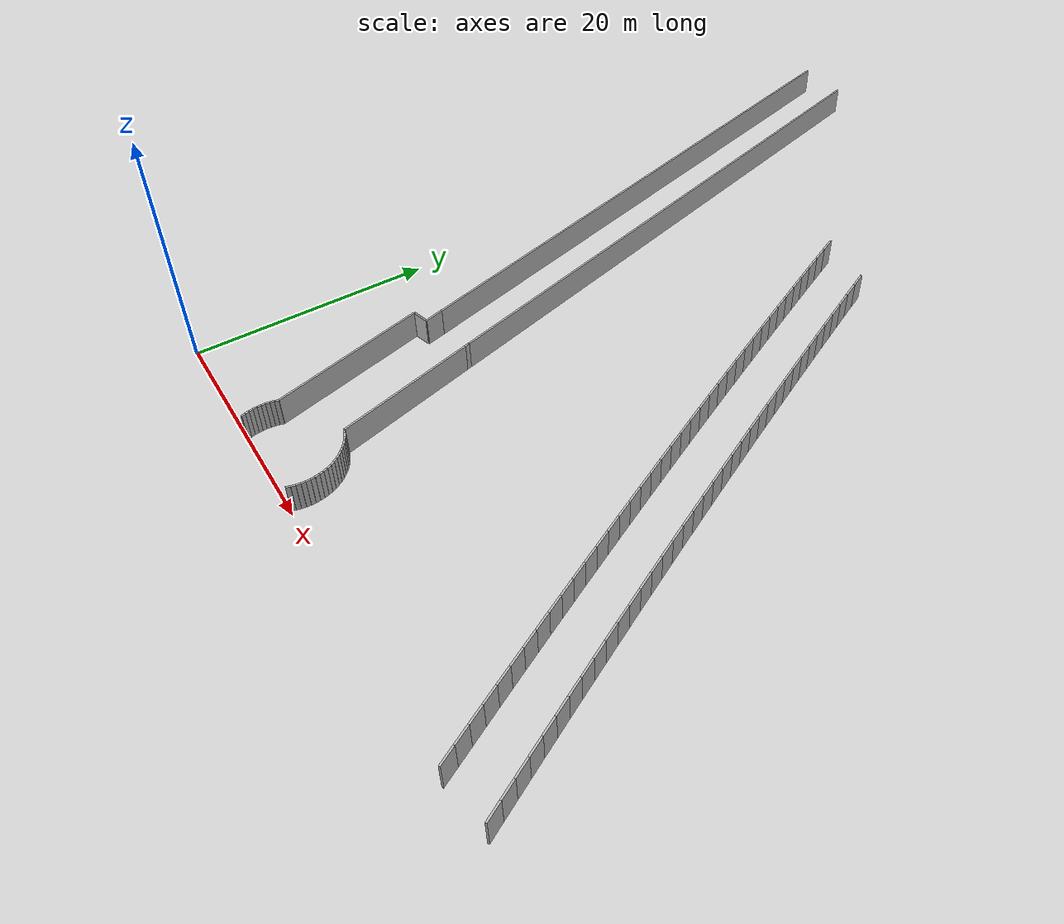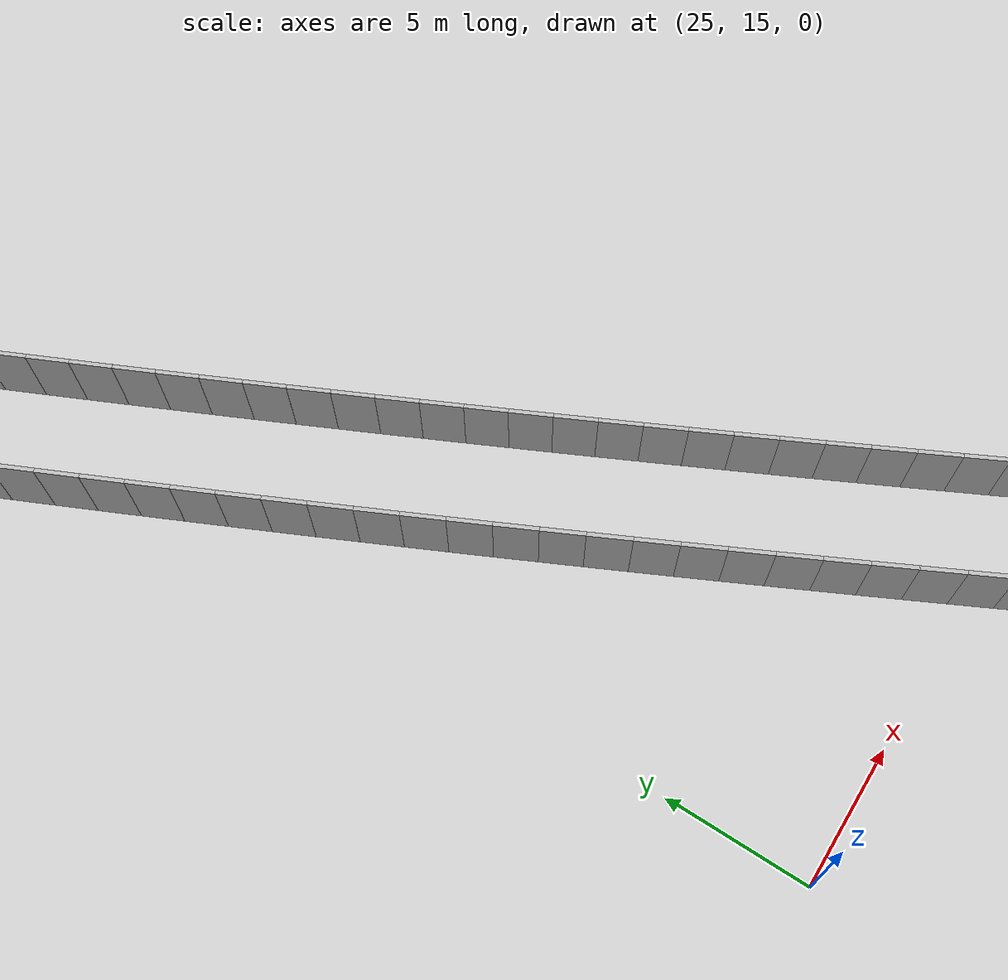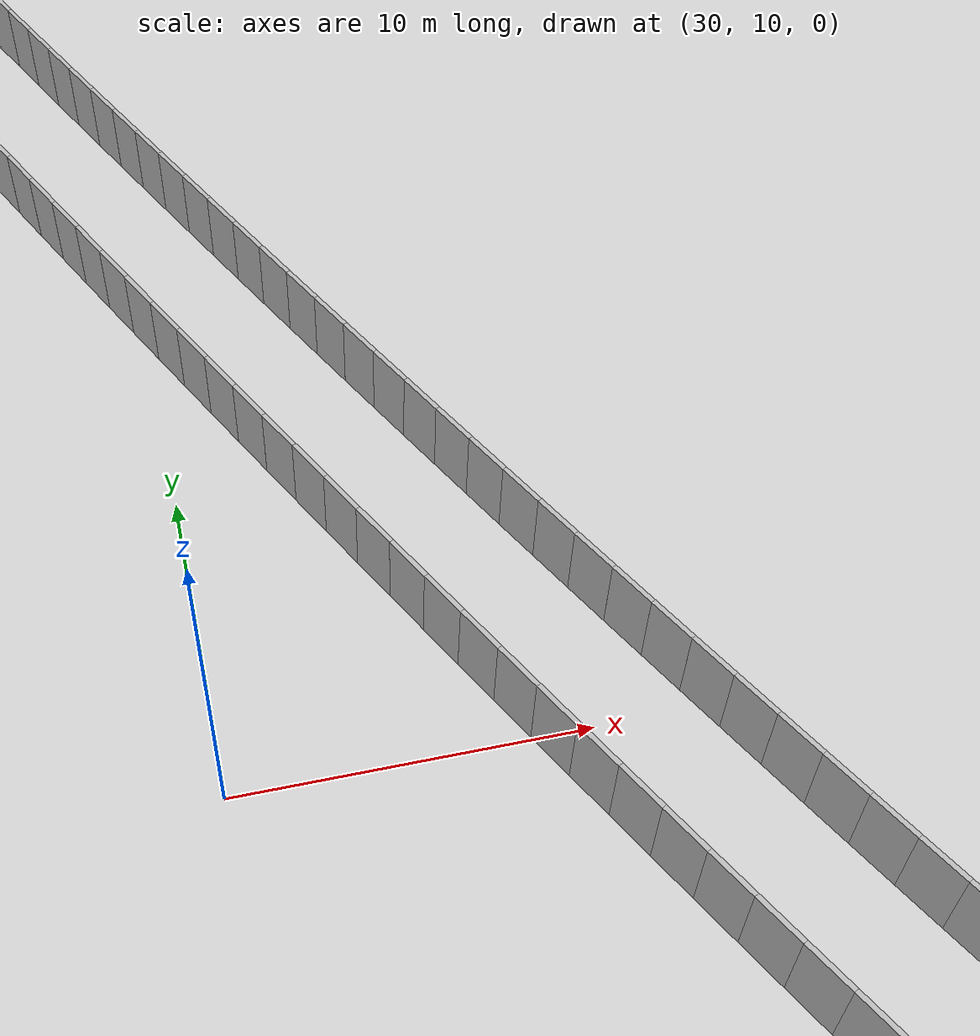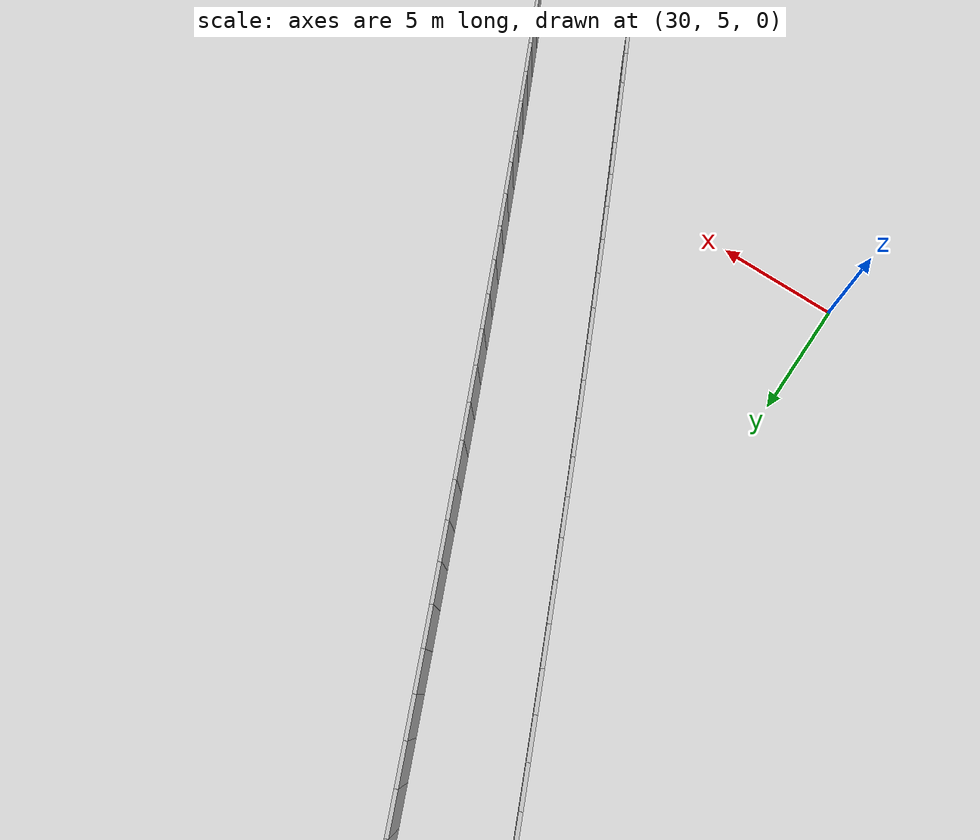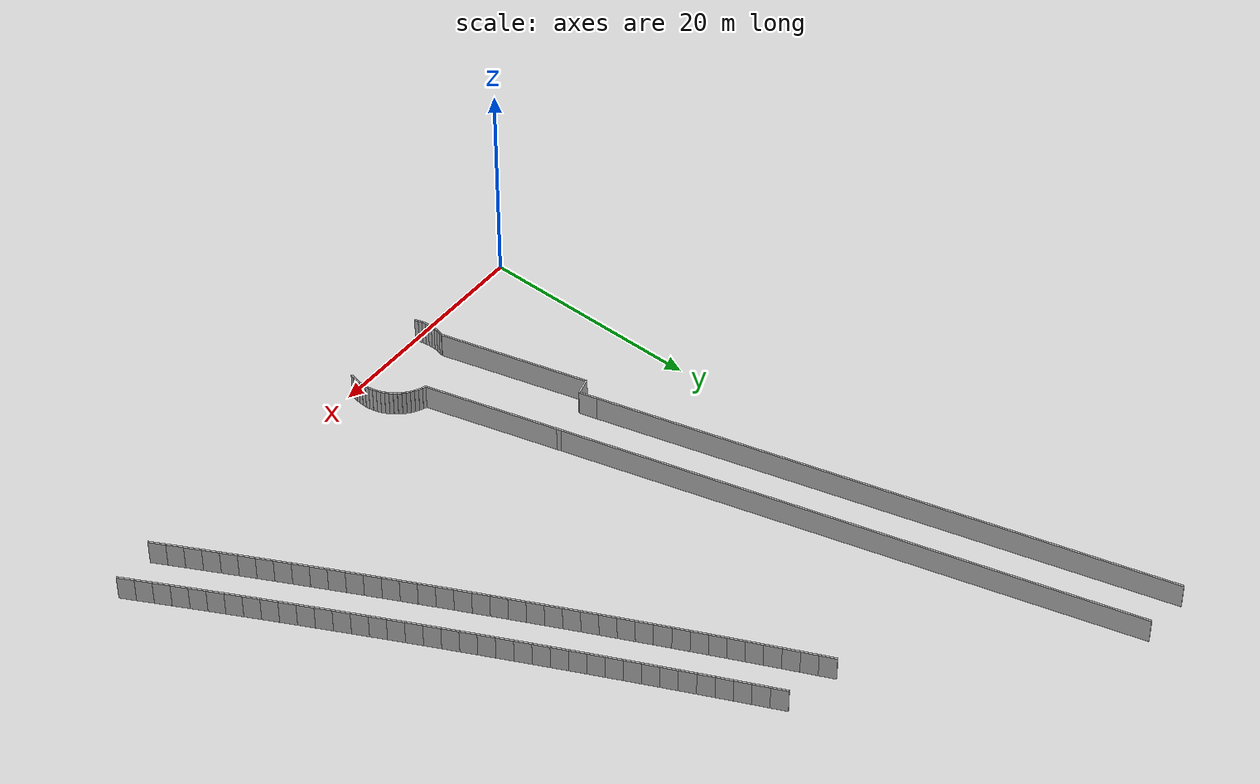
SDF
<sdf version="1.6">
 <model name="sps_0514">
  <static>1</static>
  <allow_auto_disable>0</allow_auto_disable>
  <link name="Wall270">
   <collision name="collision"><geometry><box><size>0.404023 0.15 2.5</size></box></geometry></collision>
   <visual name="visual">
    <geometry><box><size>0.404023 0.15 2.5</size></box></geometry>
    <transparency>0.0</transparency>
   </visual>
   <pose>13.4606 17.6979 1.25 0 -0 1.83141</pose>
  </link>
  <link name="Wall271">
   <collision name="collision"><geometry><box><size>51.7473 0.15 2.5</size></box></geometry></collision>
   <visual name="visual">
    <geometry><box><size>51.7473 0.15 2.5</size></box></geometry>
    <transparency>0.0</transparency>
   </visual>
   <pose>6.74169 42.8931 1.25 0 -0 1.83141</pose>
  </link>
  <link name="Wall329">
   <collision name="collision"><geometry><box><size>1.61069 0.15 2.5</size></box></geometry></collision>
   <visual name="visual">
    <geometry><box><size>1.61069 0.15 2.5</size></box></geometry>
    <transparency>0.0</transparency>
   </visual>
   <pose>8.9327 17.1149 1.25 0 -0 1.83117</pose>
  </link>
  <link name="Wall330">
   <collision name="collision"><geometry><box><size>51.7441 0.15 2.5</size></box></geometry></collision>
   <visual name="visual">
    <geometry><box><size>51.7441 0.15 2.5</size></box></geometry>
    <transparency>0.0</transparency>
   </visual>
   <pose>2.06472 42.8931 1.25 0 -0 1.83117</pose>
  </link>
  <link name="Wall1830">
   <collision name="collision"><geometry><box><size>12.1005 0.15 2.5</size></box></geometry></collision>
   <visual name="visual">
    <geometry><box><size>12.1005 0.15 2.5</size></box></geometry>
    <transparency>0.0</transparency>
   </visual>
   <pose>15.0825 11.6597 1.25 0 0 -1.30832</pose>
  </link>
  <link name="Wall1831">
   <collision name="collision"><geometry><box><size>0.359052 0.15 2.5</size></box></geometry></collision>
   <visual name="visual">
    <geometry><box><size>0.359052 0.15 2.5</size></box></geometry>
    <transparency>0.0</transparency>
   </visual>
   <pose>16.8222 5.75838 1.25 0 0 -0.330674</pose>
  </link>
  <link name="Wall1832">
   <collision name="collision"><geometry><box><size>0.358996 0.15 2.5</size></box></geometry></collision>
   <visual name="visual">
    <geometry><box><size>0.358996 0.15 2.5</size></box></geometry>
    <transparency>0.0</transparency>
   </visual>
   <pose>17.1565 5.6281 1.25 0 0 -0.412683</pose>
  </link>
  <link name="Wall1833">
   <collision name="collision"><geometry><box><size>0.359076 0.15 2.5</size></box></geometry></collision>
   <visual name="visual">
    <geometry><box><size>0.359076 0.15 2.5</size></box></geometry>
    <transparency>0.0</transparency>
   </visual>
   <pose>17.479 5.47099 1.25 0 0 -0.493907</pose>
  </link>
  <link name="Wall1834">
   <collision name="collision"><geometry><box><size>0.359122 0.15 2.5</size></box></geometry></collision>
   <visual name="visual">
    <geometry><box><size>0.359122 0.15 2.5</size></box></geometry>
    <transparency>0.0</transparency>
   </visual>
   <pose>17.7877 5.2881 1.25 0 0 -0.575841</pose>
  </link>
  <link name="Wall1835">
   <collision name="collision"><geometry><box><size>0.35892 0.15 2.5</size></box></geometry></collision>
   <visual name="visual">
    <geometry><box><size>0.35892 0.15 2.5</size></box></geometry>
    <transparency>0.0</transparency>
   </visual>
   <pose>18.0803 5.0807 1.25 0 0 -0.657106</pose>
  </link>
  <link name="Wall1836">
   <collision name="collision"><geometry><box><size>0.359021 0.15 2.5</size></box></geometry></collision>
   <visual name="visual">
    <geometry><box><size>0.359021 0.15 2.5</size></box></geometry>
    <transparency>0.0</transparency>
   </visual>
   <pose>18.355 4.85008 1.25 0 0 -0.739702</pose>
  </link>
  <link name="Wall1837">
   <collision name="collision"><geometry><box><size>0.358995 0.15 2.5</size></box></geometry></collision>
   <visual name="visual">
    <geometry><box><size>0.358995 0.15 2.5</size></box></geometry>
    <transparency>0.0</transparency>
   </visual>
   <pose>18.61 4.59779 1.25 0 0 -0.820389</pose>
  </link>
  <link name="Wall1838">
   <collision name="collision"><geometry><box><size>0.359109 0.15 2.5</size></box></geometry></collision>
   <visual name="visual">
    <geometry><box><size>0.359109 0.15 2.5</size></box></geometry>
    <transparency>0.0</transparency>
   </visual>
   <pose>18.8437 4.32561 1.25 0 0 -0.90224</pose>
  </link>
  <link name="Wall1839">
   <collision name="collision"><geometry><box><size>0.359062 0.15 2.5</size></box></geometry></collision>
   <visual name="visual">
    <geometry><box><size>0.359062 0.15 2.5</size></box></geometry>
    <transparency>0.0</transparency>
   </visual>
   <pose>19.0544 4.0352 1.25 0 0 -0.984067</pose>
  </link>
  <link name="Wall1840">
   <collision name="collision"><geometry><box><size>0.358927 0.15 2.5</size></box></geometry></collision>
   <visual name="visual">
    <geometry><box><size>0.358927 0.15 2.5</size></box></geometry>
    <transparency>0.0</transparency>
   </visual>
   <pose>19.2407 3.72868 1.25 0 0 -1.06523</pose>
  </link>
  <link name="Wall1841">
   <collision name="collision"><geometry><box><size>0.359119 0.15 2.5</size></box></geometry></collision>
   <visual name="visual">
    <geometry><box><size>0.359119 0.15 2.5</size></box></geometry>
    <transparency>0.0</transparency>
   </visual>
   <pose>19.4015 3.40797 1.25 0 0 -1.14729</pose>
  </link>
  <link name="Wall1842">
   <collision name="collision"><geometry><box><size>0.359057 0.15 2.5</size></box></geometry></collision>
   <visual name="visual">
    <geometry><box><size>0.359057 0.15 2.5</size></box></geometry>
    <transparency>0.0</transparency>
   </visual>
   <pose>19.5355 3.07518 1.25 0 0 -1.22824</pose>
  </link>
  <link name="Wall1843">
   <collision name="collision"><geometry><box><size>0.359079 0.15 2.5</size></box></geometry></collision>
   <visual name="visual">
    <geometry><box><size>0.359079 0.15 2.5</size></box></geometry>
    <transparency>0.0</transparency>
   </visual>
   <pose>19.6421 2.73259 1.25 0 0 -1.31052</pose>
  </link>
  <link name="Wall1844">
   <collision name="collision"><geometry><box><size>0.359147 0.15 2.5</size></box></geometry></collision>
   <visual name="visual">
    <geometry><box><size>0.359147 0.15 2.5</size></box></geometry>
    <transparency>0.0</transparency>
   </visual>
   <pose>19.7203 2.3824 1.25 0 0 -1.39157</pose>
  </link>
  <link name="Wall1845">
   <collision name="collision"><geometry><box><size>0.359111 0.15 2.5</size></box></geometry></collision>
   <visual name="visual">
    <geometry><box><size>0.359111 0.15 2.5</size></box></geometry>
    <transparency>0.0</transparency>
   </visual>
   <pose>19.7697 2.02699 1.25 0 0 -1.47377</pose>
  </link>
  <link name="Wall1846">
   <collision name="collision"><geometry><box><size>0.359053 0.15 2.5</size></box></geometry></collision>
   <visual name="visual">
    <geometry><box><size>0.359053 0.15 2.5</size></box></geometry>
    <transparency>0.0</transparency>
   </visual>
   <pose>19.7899 1.66878 1.25 0 0 -1.55516</pose>
  </link>
  <link name="Wall1847">
   <collision name="collision"><geometry><box><size>0.358944 0.15 2.5</size></box></geometry></collision>
   <visual name="visual">
    <geometry><box><size>0.358944 0.15 2.5</size></box></geometry>
    <transparency>0.0</transparency>
   </visual>
   <pose>19.7808 1.31019 1.25 0 0 -1.63716</pose>
  </link>
  <link name="Wall1848">
   <collision name="collision"><geometry><box><size>0.359136 0.15 2.5</size></box></geometry></collision>
   <visual name="visual">
    <geometry><box><size>0.359136 0.15 2.5</size></box></geometry>
    <transparency>0.0</transparency>
   </visual>
   <pose>19.7425 0.953505 1.25 0 0 -1.71851</pose>
  </link>
  <link name="Wall1849">
   <collision name="collision"><geometry><box><size>0.358993 0.15 2.5</size></box></geometry></collision>
   <visual name="visual">
    <geometry><box><size>0.358993 0.15 2.5</size></box></geometry>
    <transparency>0.0</transparency>
   </visual>
   <pose>19.6753 0.601088 1.25 0 0 -1.79994</pose>
  </link>
  <link name="Wall1850">
   <collision name="collision"><geometry><box><size>0.359076 0.15 2.5</size></box></geometry></collision>
   <visual name="visual">
    <geometry><box><size>0.359076 0.15 2.5</size></box></geometry>
    <transparency>0.0</transparency>
   </visual>
   <pose>19.5795 0.255385 1.25 0 0 -1.88228</pose>
  </link>
  <link name="Wall1877">
   <collision name="collision"><geometry><box><size>0.335259 0.15 2.5</size></box></geometry></collision>
   <visual name="visual">
    <geometry><box><size>0.335259 0.15 2.5</size></box></geometry>
    <transparency>0.0</transparency>
   </visual>
   <pose>11.2461 0.148513 1.25 0 -0 1.90775</pose>
  </link>
  <link name="Wall1878">
   <collision name="collision"><geometry><box><size>0.335064 0.15 2.5</size></box></geometry></collision>
   <visual name="visual">
    <geometry><box><size>0.335064 0.15 2.5</size></box></geometry>
    <transparency>0.0</transparency>
   </visual>
   <pose>11.1475 0.468612 1.25 0 -0 1.83093</pose>
  </link>
  <link name="Wall1879">
   <collision name="collision"><geometry><box><size>0.33526 0.15 2.5</size></box></geometry></collision>
   <visual name="visual">
    <geometry><box><size>0.33526 0.15 2.5</size></box></geometry>
    <transparency>0.0</transparency>
   </visual>
   <pose>11.0738 0.795302 1.25 0 -0 1.75498</pose>
  </link>
  <link name="Wall1880">
   <collision name="collision"><geometry><box><size>0.335131 0.15 2.5</size></box></geometry></collision>
   <visual name="visual">
    <geometry><box><size>0.335131 0.15 2.5</size></box></geometry>
    <transparency>0.0</transparency>
   </visual>
   <pose>11.025 1.12669 1.25 0 -0 1.67846</pose>
  </link>
  <link name="Wall1881">
   <collision name="collision"><geometry><box><size>0.335379 0.15 2.5</size></box></geometry></collision>
   <visual name="visual">
    <geometry><box><size>0.335379 0.15 2.5</size></box></geometry>
    <transparency>0.0</transparency>
   </visual>
   <pose>11.0016 1.46089 1.25 0 -0 1.60301</pose>
  </link>
  <link name="Wall1882">
   <collision name="collision"><geometry><box><size>0.335114 0.15 2.5</size></box></geometry></collision>
   <visual name="visual">
    <geometry><box><size>0.335114 0.15 2.5</size></box></geometry>
    <transparency>0.0</transparency>
   </visual>
   <pose>11.0037 1.79588 1.25 0 -0 1.52598</pose>
  </link>
  <link name="Wall1883">
   <collision name="collision"><geometry><box><size>0.335268 0.15 2.5</size></box></geometry></collision>
   <visual name="visual">
    <geometry><box><size>0.335268 0.15 2.5</size></box></geometry>
    <transparency>0.0</transparency>
   </visual>
   <pose>11.0315 2.12968 1.25 0 -0 1.44999</pose>
  </link>
  <link name="Wall1884">
   <collision name="collision"><geometry><box><size>0.335279 0.15 2.5</size></box></geometry></collision>
   <visual name="visual">
    <geometry><box><size>0.335279 0.15 2.5</size></box></geometry>
    <transparency>0.0</transparency>
   </visual>
   <pose>11.0845 2.46049 1.25 0 -0 1.37383</pose>
  </link>
  <link name="Wall1885">
   <collision name="collision"><geometry><box><size>0.335232 0.15 2.5</size></box></geometry></collision>
   <visual name="visual">
    <geometry><box><size>0.335232 0.15 2.5</size></box></geometry>
    <transparency>0.0</transparency>
   </visual>
   <pose>11.1625 2.7863 1.25 0 -0 1.29777</pose>
  </link>
  <link name="Wall1886">
   <collision name="collision"><geometry><box><size>13.4709 0.15 2.5</size></box></geometry></collision>
   <visual name="visual">
    <geometry><box><size>13.4709 0.15 2.5</size></box></geometry>
    <transparency>0.0</transparency>
   </visual>
   <pose>9.47326 9.45601 1.25 0 -0 1.83123</pose>
  </link>
  <link name="Wall1887">
   <collision name="collision"><geometry><box><size>1.44982 0.15 2.5</size></box></geometry></collision>
   <visual name="visual">
    <geometry><box><size>1.44982 0.15 2.5</size></box></geometry>
    <transparency>0.0</transparency>
   </visual>
   <pose>8.43944 16.1505 1.25 0 -0 0.259754</pose>
  </link>
  <link name="Wall8285">
   <collision name="collision"><geometry><box><size>1.49895 0.15 2.5</size></box></geometry></collision>
   <visual name="visual">
    <geometry><box><size>1.49895 0.15 2.5</size></box></geometry>
    <transparency>0.0</transparency>
   </visual>
   <pose>19.113 49.9425 1.25 0 0 -1.14451</pose>
  </link>
  <link name="Wall8286">
   <collision name="collision"><geometry><box><size>1.49904 0.15 2.5</size></box></geometry></collision>
   <visual name="visual">
    <geometry><box><size>1.49904 0.15 2.5</size></box></geometry>
    <transparency>0.0</transparency>
   </visual>
   <pose>19.7338 48.5781 1.25 0 0 -1.1431</pose>
  </link>
  <link name="Wall8287">
   <collision name="collision"><geometry><box><size>1.49879 0.15 2.5</size></box></geometry></collision>
   <visual name="visual">
    <geometry><box><size>1.49879 0.15 2.5</size></box></geometry>
    <transparency>0.0</transparency>
   </visual>
   <pose>20.3566 47.2147 1.25 0 0 -1.1415</pose>
  </link>
  <link name="Wall8288">
   <collision name="collision"><geometry><box><size>1.49904 0.15 2.5</size></box></geometry></collision>
   <visual name="visual">
    <geometry><box><size>1.49904 0.15 2.5</size></box></geometry>
    <transparency>0.0</transparency>
   </visual>
   <pose>20.9816 45.8523 1.25 0 0 -1.13988</pose>
  </link>
  <link name="Wall8289">
   <collision name="collision"><geometry><box><size>1.49888 0.15 2.5</size></box></geometry></collision>
   <visual name="visual">
    <geometry><box><size>1.49888 0.15 2.5</size></box></geometry>
    <transparency>0.0</transparency>
   </visual>
   <pose>21.6088 44.4909 1.25 0 0 -1.13817</pose>
  </link>
  <link name="Wall8290">
   <collision name="collision"><geometry><box><size>1.49881 0.15 2.5</size></box></geometry></collision>
   <visual name="visual">
    <geometry><box><size>1.49881 0.15 2.5</size></box></geometry>
    <transparency>0.0</transparency>
   </visual>
   <pose>22.2382 43.1306 1.25 0 0 -1.13671</pose>
  </link>
  <link name="Wall8291">
   <collision name="collision"><geometry><box><size>1.49904 0.15 2.5</size></box></geometry></collision>
   <visual name="visual">
    <geometry><box><size>1.49904 0.15 2.5</size></box></geometry>
    <transparency>0.0</transparency>
   </visual>
   <pose>22.8697 41.7712 1.25 0 0 -1.13512</pose>
  </link>
  <link name="Wall8292">
   <collision name="collision"><geometry><box><size>1.49886 0.15 2.5</size></box></geometry></collision>
   <visual name="visual">
    <geometry><box><size>1.49886 0.15 2.5</size></box></geometry>
    <transparency>0.0</transparency>
   </visual>
   <pose>23.5035 40.4128 1.25 0 0 -1.13345</pose>
  </link>
  <link name="Wall8293">
   <collision name="collision"><geometry><box><size>1.49897 0.15 2.5</size></box></geometry></collision>
   <visual name="visual">
    <geometry><box><size>1.49897 0.15 2.5</size></box></geometry>
    <transparency>0.0</transparency>
   </visual>
   <pose>24.1393 39.0554 1.25 0 0 -1.13204</pose>
  </link>
  <link name="Wall8294">
   <collision name="collision"><geometry><box><size>1.49896 0.15 2.5</size></box></geometry></collision>
   <visual name="visual">
    <geometry><box><size>1.49896 0.15 2.5</size></box></geometry>
    <transparency>0.0</transparency>
   </visual>
   <pose>24.7773 37.699 1.25 0 0 -1.13024</pose>
  </link>
  <link name="Wall8295">
   <collision name="collision"><geometry><box><size>1.49903 0.15 2.5</size></box></geometry></collision>
   <visual name="visual">
    <geometry><box><size>1.49903 0.15 2.5</size></box></geometry>
    <transparency>0.0</transparency>
   </visual>
   <pose>25.4175 36.3436 1.25 0 0 -1.12882</pose>
  </link>
  <link name="Wall8296">
   <collision name="collision"><geometry><box><size>1.49884 0.15 2.5</size></box></geometry></collision>
   <visual name="visual">
    <geometry><box><size>1.49884 0.15 2.5</size></box></geometry>
    <transparency>0.0</transparency>
   </visual>
   <pose>26.0597 34.9892 1.25 0 0 -1.12727</pose>
  </link>
  <link name="Wall8297">
   <collision name="collision"><geometry><box><size>1.49912 0.15 2.5</size></box></geometry></collision>
   <visual name="visual">
    <geometry><box><size>1.49912 0.15 2.5</size></box></geometry>
    <transparency>0.0</transparency>
   </visual>
   <pose>26.7041 33.6358 1.25 0 0 -1.12556</pose>
  </link>
  <link name="Wall8298">
   <collision name="collision"><geometry><box><size>1.49891 0.15 2.5</size></box></geometry></collision>
   <visual name="visual">
    <geometry><box><size>1.49891 0.15 2.5</size></box></geometry>
    <transparency>0.0</transparency>
   </visual>
   <pose>27.3507 32.2834 1.25 0 0 -1.12405</pose>
  </link>
  <link name="Wall8299">
   <collision name="collision"><geometry><box><size>1.49891 0.15 2.5</size></box></geometry></collision>
   <visual name="visual">
    <geometry><box><size>1.49891 0.15 2.5</size></box></geometry>
    <transparency>0.0</transparency>
   </visual>
   <pose>27.9993 30.9321 1.25 0 0 -1.12256</pose>
  </link>
  <link name="Wall8300">
   <collision name="collision"><geometry><box><size>1.499 0.15 2.5</size></box></geometry></collision>
   <visual name="visual">
    <geometry><box><size>1.499 0.15 2.5</size></box></geometry>
    <transparency>0.0</transparency>
   </visual>
   <pose>28.65 29.5818 1.25 0 0 -1.12082</pose>
  </link>
  <link name="Wall8301">
   <collision name="collision"><geometry><box><size>1.49895 0.15 2.5</size></box></geometry></collision>
   <visual name="visual">
    <geometry><box><size>1.49895 0.15 2.5</size></box></geometry>
    <transparency>0.0</transparency>
   </visual>
   <pose>29.303 28.2325 1.25 0 0 -1.11931</pose>
  </link>
  <link name="Wall8302">
   <collision name="collision"><geometry><box><size>1.499 0.15 2.5</size></box></geometry></collision>
   <visual name="visual">
    <geometry><box><size>1.499 0.15 2.5</size></box></geometry>
    <transparency>0.0</transparency>
   </visual>
   <pose>29.958 26.8842 1.25 0 0 -1.11784</pose>
  </link>
  <link name="Wall8303">
   <collision name="collision"><geometry><box><size>1.49882 0.15 2.5</size></box></geometry></collision>
   <visual name="visual">
    <geometry><box><size>1.49882 0.15 2.5</size></box></geometry>
    <transparency>0.0</transparency>
   </visual>
   <pose>30.6151 25.537 1.25 0 0 -1.11615</pose>
  </link>
  <link name="Wall8304">
   <collision name="collision"><geometry><box><size>1.49912 0.15 2.5</size></box></geometry></collision>
   <visual name="visual">
    <geometry><box><size>1.49912 0.15 2.5</size></box></geometry>
    <transparency>0.0</transparency>
   </visual>
   <pose>31.2744 24.1908 1.25 0 0 -1.11461</pose>
  </link>
  <link name="Wall8305">
   <collision name="collision"><geometry><box><size>1.49883 0.15 2.5</size></box></geometry></collision>
   <visual name="visual">
    <geometry><box><size>1.49883 0.15 2.5</size></box></geometry>
    <transparency>0.0</transparency>
   </visual>
   <pose>31.9359 22.8457 1.25 0 0 -1.11289</pose>
  </link>
  <link name="Wall8306">
   <collision name="collision"><geometry><box><size>1.49896 0.15 2.5</size></box></geometry></collision>
   <visual name="visual">
    <geometry><box><size>1.49896 0.15 2.5</size></box></geometry>
    <transparency>0.0</transparency>
   </visual>
   <pose>32.5995 21.5017 1.25 0 0 -1.11143</pose>
  </link>
  <link name="Wall8307">
   <collision name="collision"><geometry><box><size>1.4989 0.15 2.5</size></box></geometry></collision>
   <visual name="visual">
    <geometry><box><size>1.4989 0.15 2.5</size></box></geometry>
    <transparency>0.0</transparency>
   </visual>
   <pose>33.2653 20.1587 1.25 0 0 -1.10977</pose>
  </link>
  <link name="Wall8308">
   <collision name="collision"><geometry><box><size>1.49892 0.15 2.5</size></box></geometry></collision>
   <visual name="visual">
    <geometry><box><size>1.49892 0.15 2.5</size></box></geometry>
    <transparency>0.0</transparency>
   </visual>
   <pose>33.9331 18.8168 1.25 0 0 -1.10828</pose>
  </link>
  <link name="Wall8309">
   <collision name="collision"><geometry><box><size>1.49911 0.15 2.5</size></box></geometry></collision>
   <visual name="visual">
    <geometry><box><size>1.49911 0.15 2.5</size></box></geometry>
    <transparency>0.0</transparency>
   </visual>
   <pose>34.603 17.4758 1.25 0 0 -1.10675</pose>
  </link>
  <link name="Wall8310">
   <collision name="collision"><geometry><box><size>1.49909 0.15 2.5</size></box></geometry></collision>
   <visual name="visual">
    <geometry><box><size>1.49909 0.15 2.5</size></box></geometry>
    <transparency>0.0</transparency>
   </visual>
   <pose>35.275 16.1358 1.25 0 0 -1.10505</pose>
  </link>
  <link name="Wall8311">
   <collision name="collision"><geometry><box><size>1.49887 0.15 2.5</size></box></geometry></collision>
   <visual name="visual">
    <geometry><box><size>1.49887 0.15 2.5</size></box></geometry>
    <transparency>0.0</transparency>
   </visual>
   <pose>35.9492 14.797 1.25 0 0 -1.10352</pose>
  </link>
  <link name="Wall8312">
   <collision name="collision"><geometry><box><size>1.49894 0.15 2.5</size></box></geometry></collision>
   <visual name="visual">
    <geometry><box><size>1.49894 0.15 2.5</size></box></geometry>
    <transparency>0.0</transparency>
   </visual>
   <pose>36.6254 13.4593 1.25 0 0 -1.102</pose>
  </link>
  <link name="Wall8313">
   <collision name="collision"><geometry><box><size>1.49882 0.15 2.5</size></box></geometry></collision>
   <visual name="visual">
    <geometry><box><size>1.49882 0.15 2.5</size></box></geometry>
    <transparency>0.0</transparency>
   </visual>
   <pose>37.3038 12.1227 1.25 0 0 -1.10036</pose>
  </link>
  <link name="Wall8314">
   <collision name="collision"><geometry><box><size>1.49889 0.15 2.5</size></box></geometry></collision>
   <visual name="visual">
    <geometry><box><size>1.49889 0.15 2.5</size></box></geometry>
    <transparency>0.0</transparency>
   </visual>
   <pose>37.9842 10.7872 1.25 0 0 -1.09874</pose>
  </link>
  <link name="Wall8315">
   <collision name="collision"><geometry><box><size>1.49894 0.15 2.5</size></box></geometry></collision>
   <visual name="visual">
    <geometry><box><size>1.49894 0.15 2.5</size></box></geometry>
    <transparency>0.0</transparency>
   </visual>
   <pose>38.6668 9.45271 1.25 0 0 -1.09724</pose>
  </link>
  <link name="Wall8316">
   <collision name="collision"><geometry><box><size>1.49894 0.15 2.5</size></box></geometry></collision>
   <visual name="visual">
    <geometry><box><size>1.49894 0.15 2.5</size></box></geometry>
    <transparency>0.0</transparency>
   </visual>
   <pose>39.3516 8.11931 1.25 0 0 -1.09555</pose>
  </link>
  <link name="Wall8317">
   <collision name="collision"><geometry><box><size>1.49899 0.15 2.5</size></box></geometry></collision>
   <visual name="visual">
    <geometry><box><size>1.49899 0.15 2.5</size></box></geometry>
    <transparency>0.0</transparency>
   </visual>
   <pose>40.0385 6.787 1.25 0 0 -1.09396</pose>
  </link>
  <link name="Wall8318">
   <collision name="collision"><geometry><box><size>1.49878 0.15 2.5</size></box></geometry></collision>
   <visual name="visual">
    <geometry><box><size>1.49878 0.15 2.5</size></box></geometry>
    <transparency>0.0</transparency>
   </visual>
   <pose>40.7273 5.45579 1.25 0 0 -1.09256</pose>
  </link>
  <link name="Wall8319">
   <collision name="collision"><geometry><box><size>1.49898 0.15 2.5</size></box></geometry></collision>
   <visual name="visual">
    <geometry><box><size>1.49898 0.15 2.5</size></box></geometry>
    <transparency>0.0</transparency>
   </visual>
   <pose>41.4183 4.12569 1.25 0 0 -1.0908</pose>
  </link>
  <link name="Wall8320">
   <collision name="collision"><geometry><box><size>1.49905 0.15 2.5</size></box></geometry></collision>
   <visual name="visual">
    <geometry><box><size>1.49905 0.15 2.5</size></box></geometry>
    <transparency>0.0</transparency>
   </visual>
   <pose>42.1115 2.79658 1.25 0 0 -1.0893</pose>
  </link>
  <link name="Wall8321">
   <collision name="collision"><geometry><box><size>1.4989 0.15 2.5</size></box></geometry></collision>
   <visual name="visual">
    <geometry><box><size>1.4989 0.15 2.5</size></box></geometry>
    <transparency>0.0</transparency>
   </visual>
   <pose>42.8068 1.46858 1.25 0 0 -1.08774</pose>
  </link>
  <link name="Wall8322">
   <collision name="collision"><geometry><box><size>1.49903 0.15 2.5</size></box></geometry></collision>
   <visual name="visual">
    <geometry><box><size>1.49903 0.15 2.5</size></box></geometry>
    <transparency>0.0</transparency>
   </visual>
   <pose>43.5041 0.141677 1.25 0 0 -1.08617</pose>
  </link>
  <link name="Wall9368">
   <collision name="collision"><geometry><box><size>1.4925 0.15 2.5</size></box></geometry></collision>
   <visual name="visual">
    <geometry><box><size>1.4925 0.15 2.5</size></box></geometry>
    <transparency>0.0</transparency>
   </visual>
   <pose>24.1208 48.9386 1.25 0 0 -1.14137</pose>
  </link>
  <link name="Wall9369">
   <collision name="collision"><geometry><box><size>1.49243 0.15 2.5</size></box></geometry></collision>
   <visual name="visual">
    <geometry><box><size>1.49243 0.15 2.5</size></box></geometry>
    <transparency>0.0</transparency>
   </visual>
   <pose>24.7432 47.5821 1.25 0 0 -1.13991</pose>
  </link>
  <link name="Wall9370">
   <collision name="collision"><geometry><box><size>1.49227 0.15 2.5</size></box></geometry></collision>
   <visual name="visual">
    <geometry><box><size>1.49227 0.15 2.5</size></box></geometry>
    <transparency>0.0</transparency>
   </visual>
   <pose>25.3676 46.2267 1.25 0 0 -1.13819</pose>
  </link>
  <link name="Wall9371">
   <collision name="collision"><geometry><box><size>1.49239 0.15 2.5</size></box></geometry></collision>
   <visual name="visual">
    <geometry><box><size>1.49239 0.15 2.5</size></box></geometry>
    <transparency>0.0</transparency>
   </visual>
   <pose>25.9943 44.8723 1.25 0 0 -1.13675</pose>
  </link>
  <link name="Wall9372">
   <collision name="collision"><geometry><box><size>1.49235 0.15 2.5</size></box></geometry></collision>
   <visual name="visual">
    <geometry><box><size>1.49235 0.15 2.5</size></box></geometry>
    <transparency>0.0</transparency>
   </visual>
   <pose>26.6229 43.5188 1.25 0 0 -1.13516</pose>
  </link>
  <link name="Wall9373">
   <collision name="collision"><geometry><box><size>1.49242 0.15 2.5</size></box></geometry></collision>
   <visual name="visual">
    <geometry><box><size>1.49242 0.15 2.5</size></box></geometry>
    <transparency>0.0</transparency>
   </visual>
   <pose>27.2538 42.1663 1.25 0 0 -1.13351</pose>
  </link>
  <link name="Wall9374">
   <collision name="collision"><geometry><box><size>1.49223 0.15 2.5</size></box></geometry></collision>
   <visual name="visual">
    <geometry><box><size>1.49223 0.15 2.5</size></box></geometry>
    <transparency>0.0</transparency>
   </visual>
   <pose>27.8869 40.8149 1.25 0 0 -1.13196</pose>
  </link>
  <link name="Wall9375">
   <collision name="collision"><geometry><box><size>1.49261 0.15 2.5</size></box></geometry></collision>
   <visual name="visual">
    <geometry><box><size>1.49261 0.15 2.5</size></box></geometry>
    <transparency>0.0</transparency>
   </visual>
   <pose>28.5221 39.4644 1.25 0 0 -1.13036</pose>
  </link>
  <link name="Wall9376">
   <collision name="collision"><geometry><box><size>1.49244 0.15 2.5</size></box></geometry></collision>
   <visual name="visual">
    <geometry><box><size>1.49244 0.15 2.5</size></box></geometry>
    <transparency>0.0</transparency>
   </visual>
   <pose>29.1594 38.1148 1.25 0 0 -1.12877</pose>
  </link>
  <link name="Wall9377">
   <collision name="collision"><geometry><box><size>1.4925 0.15 2.5</size></box></geometry></collision>
   <visual name="visual">
    <geometry><box><size>1.4925 0.15 2.5</size></box></geometry>
    <transparency>0.0</transparency>
   </visual>
   <pose>29.799 36.7663 1.25 0 0 -1.12716</pose>
  </link>
  <link name="Wall9378">
   <collision name="collision"><geometry><box><size>1.49241 0.15 2.5</size></box></geometry></collision>
   <visual name="visual">
    <geometry><box><size>1.49241 0.15 2.5</size></box></geometry>
    <transparency>0.0</transparency>
   </visual>
   <pose>30.4406 35.4188 1.25 0 0 -1.12568</pose>
  </link>
  <link name="Wall9379">
   <collision name="collision"><geometry><box><size>1.49247 0.15 2.5</size></box></geometry></collision>
   <visual name="visual">
    <geometry><box><size>1.49247 0.15 2.5</size></box></geometry>
    <transparency>0.0</transparency>
   </visual>
   <pose>31.0843 34.0723 1.25 0 0 -1.12407</pose>
  </link>
  <link name="Wall9380">
   <collision name="collision"><geometry><box><size>1.49224 0.15 2.5</size></box></geometry></collision>
   <visual name="visual">
    <geometry><box><size>1.49224 0.15 2.5</size></box></geometry>
    <transparency>0.0</transparency>
   </visual>
   <pose>31.73 32.7269 1.25 0 0 -1.1225</pose>
  </link>
  <link name="Wall9381">
   <collision name="collision"><geometry><box><size>1.49256 0.15 2.5</size></box></geometry></collision>
   <visual name="visual">
    <geometry><box><size>1.49256 0.15 2.5</size></box></geometry>
    <transparency>0.0</transparency>
   </visual>
   <pose>32.378 31.3825 1.25 0 0 -1.12092</pose>
  </link>
  <link name="Wall9382">
   <collision name="collision"><geometry><box><size>1.49226 0.15 2.5</size></box></geometry></collision>
   <visual name="visual">
    <geometry><box><size>1.49226 0.15 2.5</size></box></geometry>
    <transparency>0.0</transparency>
   </visual>
   <pose>33.028 30.0391 1.25 0 0 -1.11937</pose>
  </link>
  <link name="Wall9383">
   <collision name="collision"><geometry><box><size>1.49234 0.15 2.5</size></box></geometry></collision>
   <visual name="visual">
    <geometry><box><size>1.49234 0.15 2.5</size></box></geometry>
    <transparency>0.0</transparency>
   </visual>
   <pose>33.6801 28.6968 1.25 0 0 -1.11776</pose>
  </link>
  <link name="Wall9384">
   <collision name="collision"><geometry><box><size>1.49251 0.15 2.5</size></box></geometry></collision>
   <visual name="visual">
    <geometry><box><size>1.49251 0.15 2.5</size></box></geometry>
    <transparency>0.0</transparency>
   </visual>
   <pose>34.3345 27.3555 1.25 0 0 -1.11604</pose>
  </link>
  <link name="Wall9385">
   <collision name="collision"><geometry><box><size>1.49238 0.15 2.5</size></box></geometry></collision>
   <visual name="visual">
    <geometry><box><size>1.49238 0.15 2.5</size></box></geometry>
    <transparency>0.0</transparency>
   </visual>
   <pose>34.991 26.0152 1.25 0 0 -1.11463</pose>
  </link>
  <link name="Wall9386">
   <collision name="collision"><geometry><box><size>1.49256 0.15 2.5</size></box></geometry></collision>
   <visual name="visual">
    <geometry><box><size>1.49256 0.15 2.5</size></box></geometry>
    <transparency>0.0</transparency>
   </visual>
   <pose>35.6496 24.6759 1.25 0 0 -1.11291</pose>
  </link>
  <link name="Wall9387">
   <collision name="collision"><geometry><box><size>1.49227 0.15 2.5</size></box></geometry></collision>
   <visual name="visual">
    <geometry><box><size>1.49227 0.15 2.5</size></box></geometry>
    <transparency>0.0</transparency>
   </visual>
   <pose>36.3103 23.3377 1.25 0 0 -1.11145</pose>
  </link>
  <link name="Wall9388">
   <collision name="collision"><geometry><box><size>1.49245 0.15 2.5</size></box></geometry></collision>
   <visual name="visual">
    <geometry><box><size>1.49245 0.15 2.5</size></box></geometry>
    <transparency>0.0</transparency>
   </visual>
   <pose>36.9731 22.0006 1.25 0 0 -1.10973</pose>
  </link>
  <link name="Wall9389">
   <collision name="collision"><geometry><box><size>1.4924 0.15 2.5</size></box></geometry></collision>
   <visual name="visual">
    <geometry><box><size>1.4924 0.15 2.5</size></box></geometry>
    <transparency>0.0</transparency>
   </visual>
   <pose>37.6381 20.6645 1.25 0 0 -1.10825</pose>
  </link>
  <link name="Wall9390">
   <collision name="collision"><geometry><box><size>1.4925 0.15 2.5</size></box></geometry></collision>
   <visual name="visual">
    <geometry><box><size>1.4925 0.15 2.5</size></box></geometry>
    <transparency>0.0</transparency>
   </visual>
   <pose>38.305 19.3294 1.25 0 0 -1.10673</pose>
  </link>
  <link name="Wall9391">
   <collision name="collision"><geometry><box><size>1.4924 0.15 2.5</size></box></geometry></collision>
   <visual name="visual">
    <geometry><box><size>1.4924 0.15 2.5</size></box></geometry>
    <transparency>0.0</transparency>
   </visual>
   <pose>38.9741 17.9953 1.25 0 0 -1.10523</pose>
  </link>
  <link name="Wall9392">
   <collision name="collision"><geometry><box><size>1.49246 0.15 2.5</size></box></geometry></collision>
   <visual name="visual">
    <geometry><box><size>1.49246 0.15 2.5</size></box></geometry>
    <transparency>0.0</transparency>
   </visual>
   <pose>39.6453 16.6623 1.25 0 0 -1.10342</pose>
  </link>
  <link name="Wall9393">
   <collision name="collision"><geometry><box><size>1.49231 0.15 2.5</size></box></geometry></collision>
   <visual name="visual">
    <geometry><box><size>1.49231 0.15 2.5</size></box></geometry>
    <transparency>0.0</transparency>
   </visual>
   <pose>40.3187 15.3305 1.25 0 0 -1.1019</pose>
  </link>
  <link name="Wall9394">
   <collision name="collision"><geometry><box><size>1.49229 0.15 2.5</size></box></geometry></collision>
   <visual name="visual">
    <geometry><box><size>1.49229 0.15 2.5</size></box></geometry>
    <transparency>0.0</transparency>
   </visual>
   <pose>40.994 13.9998 1.25 0 0 -1.10038</pose>
  </link>
  <link name="Wall9395">
   <collision name="collision"><geometry><box><size>1.49237 0.15 2.5</size></box></geometry></collision>
   <visual name="visual">
    <geometry><box><size>1.49237 0.15 2.5</size></box></geometry>
    <transparency>0.0</transparency>
   </visual>
   <pose>41.6715 12.6701 1.25 0 0 -1.09875</pose>
  </link>
  <link name="Wall9396">
   <collision name="collision"><geometry><box><size>1.49241 0.15 2.5</size></box></geometry></collision>
   <visual name="visual">
    <geometry><box><size>1.49241 0.15 2.5</size></box></geometry>
    <transparency>0.0</transparency>
   </visual>
   <pose>42.3511 11.3414 1.25 0 0 -1.09725</pose>
  </link>
  <link name="Wall9397">
   <collision name="collision"><geometry><box><size>1.49239 0.15 2.5</size></box></geometry></collision>
   <visual name="visual">
    <geometry><box><size>1.49239 0.15 2.5</size></box></geometry>
    <transparency>0.0</transparency>
   </visual>
   <pose>43.0328 10.0138 1.25 0 0 -1.09559</pose>
  </link>
  <link name="Wall9398">
   <collision name="collision"><geometry><box><size>1.49255 0.15 2.5</size></box></geometry></collision>
   <visual name="visual">
    <geometry><box><size>1.49255 0.15 2.5</size></box></geometry>
    <transparency>0.0</transparency>
   </visual>
   <pose>43.7166 8.68721 1.25 0 0 -1.09413</pose>
  </link>
  <link name="Wall9399">
   <collision name="collision"><geometry><box><size>1.49237 0.15 2.5</size></box></geometry></collision>
   <visual name="visual">
    <geometry><box><size>1.49237 0.15 2.5</size></box></geometry>
    <transparency>0.0</transparency>
   </visual>
   <pose>44.4025 7.36171 1.25 0 0 -1.09241</pose>
  </link>
  <link name="Wall9400">
   <collision name="collision"><geometry><box><size>1.49246 0.15 2.5</size></box></geometry></collision>
   <visual name="visual">
    <geometry><box><size>1.49246 0.15 2.5</size></box></geometry>
    <transparency>0.0</transparency>
   </visual>
   <pose>45.0907 6.0374 1.25 0 0 -1.09078</pose>
  </link>
  <link name="Wall9401">
   <collision name="collision"><geometry><box><size>1.49241 0.15 2.5</size></box></geometry></collision>
   <visual name="visual">
    <geometry><box><size>1.49241 0.15 2.5</size></box></geometry>
    <transparency>0.0</transparency>
   </visual>
   <pose>45.7808 4.7141 1.25 0 0 -1.08943</pose>
  </link>
  <link name="Wall9402">
   <collision name="collision"><geometry><box><size>1.49238 0.15 2.5</size></box></geometry></collision>
   <visual name="visual">
    <geometry><box><size>1.49238 0.15 2.5</size></box></geometry>
    <transparency>0.0</transparency>
   </visual>
   <pose>46.4729 3.39189 1.25 0 0 -1.08771</pose>
  </link>
  <link name="Wall9403">
   <collision name="collision"><geometry><box><size>1.49229 0.15 2.5</size></box></geometry></collision>
   <visual name="visual">
    <geometry><box><size>1.49229 0.15 2.5</size></box></geometry>
    <transparency>0.0</transparency>
   </visual>
   <pose>47.1672 2.07091 1.25 0 0 -1.08606</pose>
  </link>
  <link name="Wall9404">
   <collision name="collision"><geometry><box><size>1.49237 0.15 2.5</size></box></geometry></collision>
   <visual name="visual">
    <geometry><box><size>1.49237 0.15 2.5</size></box></geometry>
    <transparency>0.0</transparency>
   </visual>
   <pose>47.8635 0.751021 1.25 0 0 -1.08456</pose>
  </link>
 </model>
</sdf>
